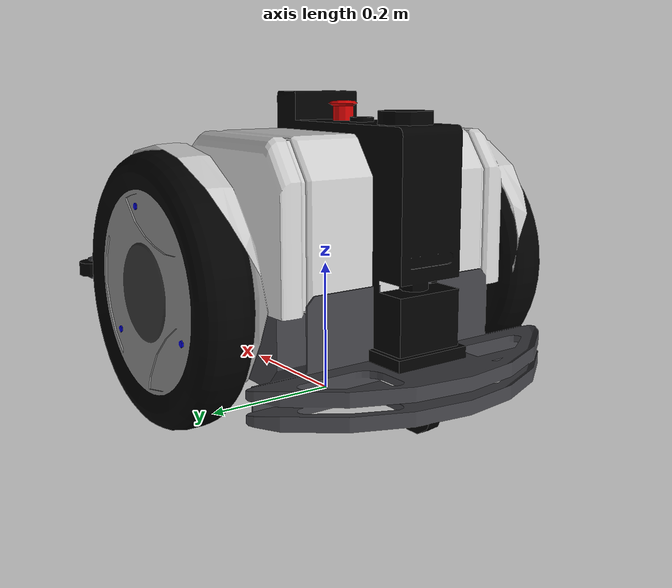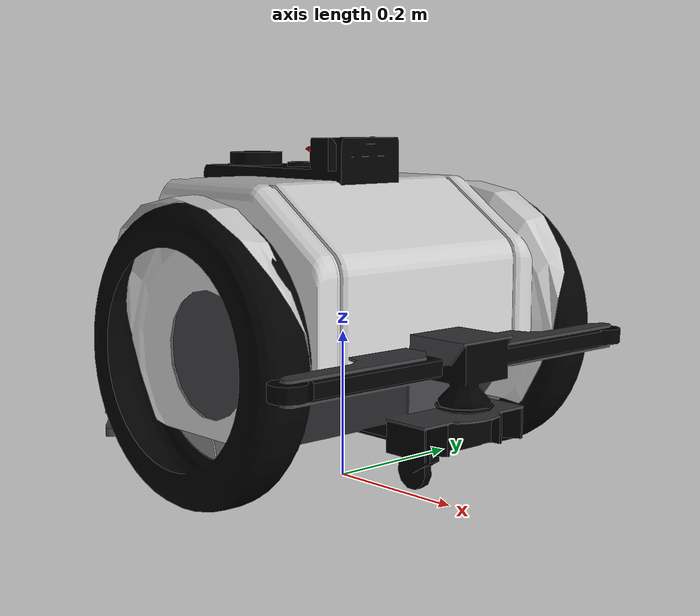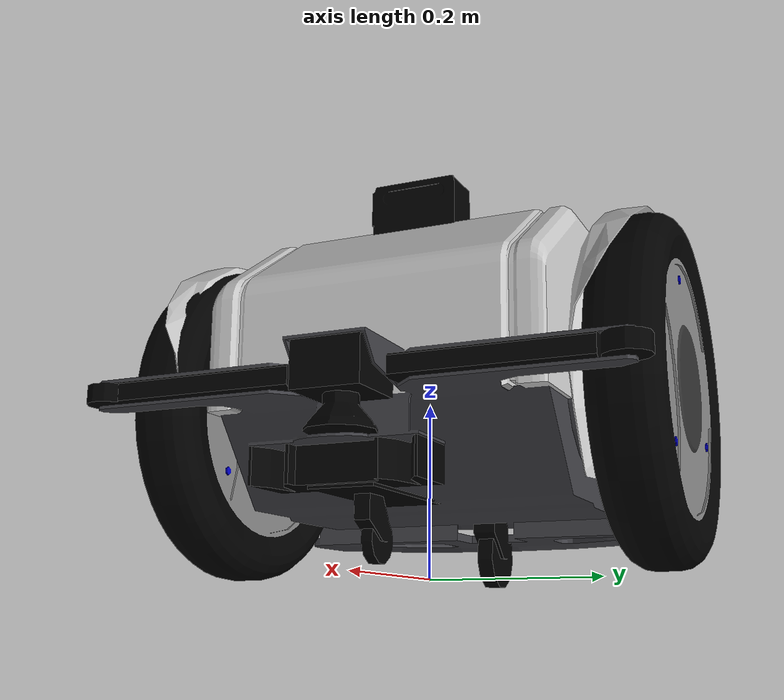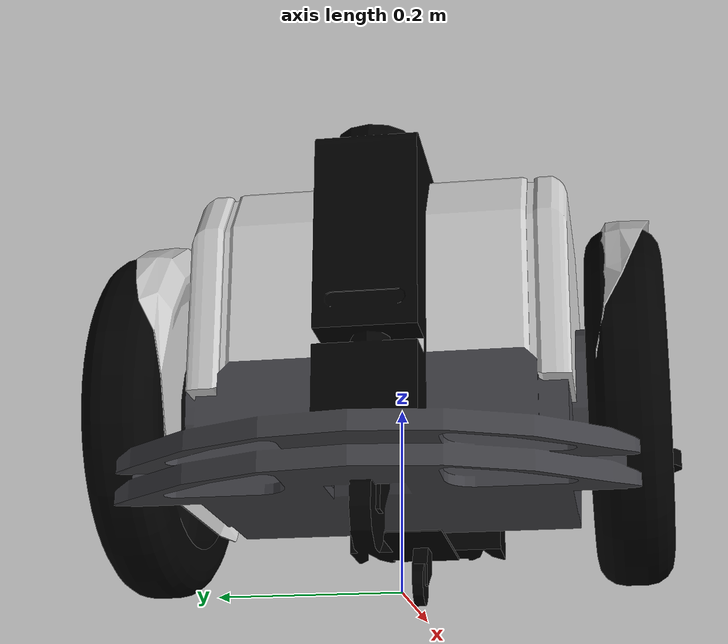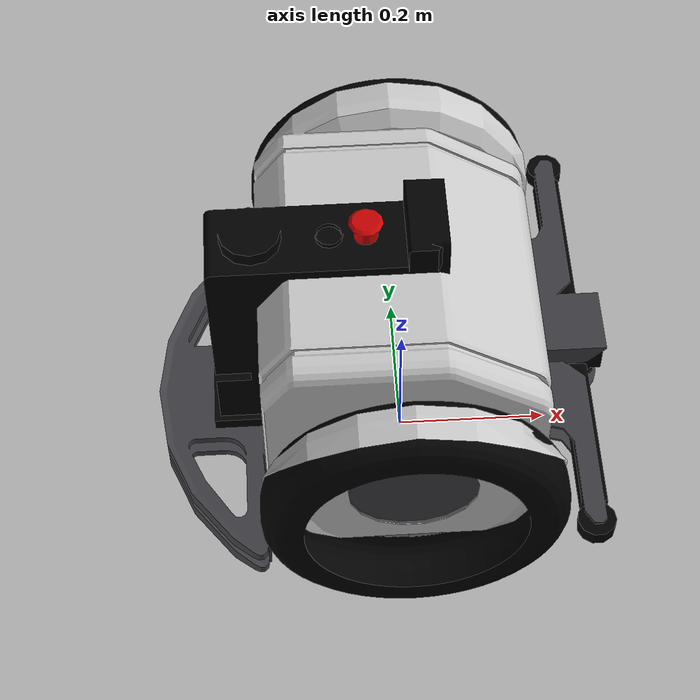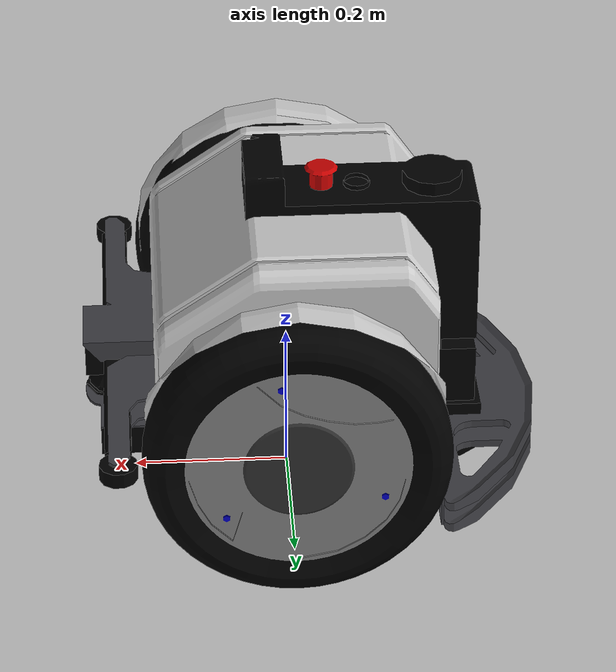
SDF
<?xml version='1.0' encoding='UTF-8'?>
<sdf version="1.8">
  <model name="tugbot">
    <pose>0 0 0 0 0 0</pose>
    <self_collide>false</self_collide>
    <static>false</static>

    <!-- BASE FOOTPRINT (same as TurtleBot3) -->
    <link name="base_footprint"/>

    <!-- BASE LINK -->
    <link name="base_link">
      <inertial>
        <pose>-0.1 0 0.1 0 0 0</pose>
        <mass>46.2</mass>
        <inertia>
          <ixx>1.55925</ixx>
          <ixy>0</ixy>
          <ixz>0</ixz>
          <iyy>1.55925</iyy>
          <iyz>0</iyz>
          <izz>1.55925</izz>
        </inertia>
      </inertial>
      <collision name="base_link_collision">
        <geometry>
          <mesh>
            <uri>meshes/base/tugbot_simp.stl</uri>
          </mesh>
        </geometry>
      </collision>
      <visual name="base_link_visual">
        <geometry>
          <mesh>
            <uri>meshes/base/tugbot_simp.dae</uri>
          </mesh>
        </geometry>
      </visual>
    </link>

    <!-- IMU LINK (same structure as TurtleBot3) -->
    <link name="imu_link">
      <sensor name="tugbot_imu" type="imu">
        <always_on>true</always_on>
        <update_rate>200</update_rate>
        <topic>imu</topic>
        <imu>
          <angular_velocity>
            <x><noise type="gaussian"><mean>0.0</mean><stddev>2e-4</stddev></noise></x>
            <y><noise type="gaussian"><mean>0.0</mean><stddev>2e-4</stddev></noise></y>
            <z><noise type="gaussian"><mean>0.0</mean><stddev>2e-4</stddev></noise></z>
          </angular_velocity>
          <linear_acceleration>
            <x><noise type="gaussian"><mean>0.0</mean><stddev>1.7e-2</stddev></noise></x>
            <y><noise type="gaussian"><mean>0.0</mean><stddev>1.7e-2</stddev></noise></y>
            <z><noise type="gaussian"><mean>0.0</mean><stddev>1.7e-2</stddev></noise></z>
          </linear_acceleration>
        </imu>
      </sensor>
    </link>

    <!-- LIDAR LINK (same structure as TurtleBot3 base_scan) -->
    <link name="base_scan">
      <pose>0.221 0 0.1404 0 0 0</pose>
      <inertial>
        <mass>0.114</mass>
        <inertia>
          <ixx>0.001</ixx>
          <ixy>0.000</ixy>
          <ixz>0.000</ixz>
          <iyy>0.001</iyy>
          <iyz>0.000</iyz>
          <izz>0.001</izz>
        </inertia>
      </inertial>
      <sensor name="hls_lfcd_lds" type="gpu_lidar">
        <always_on>true</always_on>
        <visualize>true</visualize>
        <update_rate>10</update_rate>
        <topic>scan</topic>
        <gz_frame_id>base_scan</gz_frame_id>
        <ray>
          <scan>
            <horizontal>
              <samples>360</samples>
              <resolution>1.0</resolution>
              <min_angle>0.0</min_angle>
              <max_angle>6.28</max_angle>
            </horizontal>
          </scan>
          <range>
            <min>0.60</min>
            <max>10.0</max>
            <resolution>0.015</resolution>
          </range>
          <noise>
            <type>gaussian</type>
            <mean>0.0</mean>
            <stddev>0.005</stddev>
          </noise>
        </ray>
      </sensor>
    </link>

    <!-- WHEELS -->
    <link name="wheel_left_link">
      <pose>0 0.257 0.195 -1.5708 0 0</pose>
      <inertial>
        <mass>2.0</mass>
        <inertia>
          <ixx>0.019</ixx>
          <ixy>0</ixy>
          <ixz>0</ixz>
          <iyy>0.019</iyy>
          <iyz>0</iyz>
          <izz>0.038</izz>
        </inertia>
      </inertial>
      <collision name="wheel_left_collision">
        <geometry>
          <cylinder>
            <radius>0.195</radius>
            <length>0.05</length>
          </cylinder>
        </geometry>
        <surface>
          <friction>
            <ode>
              <mu>100000</mu>
              <mu2>100000</mu2>
              <fdir1>0 0 0</fdir1>
              <slip1>0.0</slip1>
              <slip2>0.0</slip2>
            </ode>
          </friction>
          <contact>
            <ode>
              <soft_cfm>0</soft_cfm>
              <soft_erp>0.2</soft_erp>
              <kp>1e+5</kp>
              <kd>1</kd>
              <max_vel>0.01</max_vel>
              <min_depth>0.001</min_depth>
            </ode>
          </contact>
        </surface>
      </collision>
      <visual name="wheel_left_visual">
        <pose>0 0 -0.03 0 0 0</pose>
        <geometry>
          <mesh>
            <scale>0.98 0.98 1.0</scale>
            <uri>meshes/wheel/wheel.dae</uri>
          </mesh>
        </geometry>
      </visual>
    </link>

    <link name="wheel_right_link">
      <pose>0 -0.257 0.195 -1.5708 0 0</pose>
      <inertial>
        <mass>2.0</mass>
        <inertia>
          <ixx>0.019</ixx>
          <ixy>0</ixy>
          <ixz>0</ixz>
          <iyy>0.019</iyy>
          <iyz>0</iyz>
          <izz>0.038</izz>
        </inertia>
      </inertial>
      <collision name="wheel_right_collision">
        <geometry>
          <cylinder>
            <radius>0.195</radius>
            <length>0.05</length>
          </cylinder>
        </geometry>
        <surface>
          <friction>
            <ode>
              <mu>100000</mu>
              <mu2>100000</mu2>
              <fdir1>0 0 0</fdir1>
              <slip1>0.0</slip1>
              <slip2>0.0</slip2>
            </ode>
          </friction>
          <contact>
            <ode>
              <soft_cfm>0</soft_cfm>
              <soft_erp>0.2</soft_erp>
              <kp>1e+5</kp>
              <kd>1</kd>
              <max_vel>0.01</max_vel>
              <min_depth>0.001</min_depth>
            </ode>
          </contact>
        </surface>
      </collision>
      <visual name="wheel_right_visual">
        <pose>0 0 -0.03 0 0 0</pose>
        <geometry>
          <mesh>
            <scale>0.98 0.98 1.0</scale>
            <uri>meshes/wheel/wheel.dae</uri>
          </mesh>
        </geometry>
      </visual>
    </link>

    <!-- CASTER WHEELS -->
    <link name="caster_front_link">
      <pose>0.145 0 0.035 0 0 0</pose>
      <inertial>
        <mass>0.1</mass>
        <inertia>
          <ixx>0.00001</ixx>
          <ixy>0</ixy>
          <ixz>0</ixz>
          <iyy>0.00001</iyy>
          <iyz>0</iyz>
          <izz>0.00001</izz>
        </inertia>
      </inertial>
      <collision name="collision">
        <geometry>
          <sphere>
            <radius>0.025</radius>
          </sphere>
        </geometry>
        <surface>
          <contact>
            <ode>
              <soft_cfm>0</soft_cfm>
              <soft_erp>0.2</soft_erp>
              <kp>1e+5</kp>
              <kd>1</kd>
              <max_vel>0.01</max_vel>
              <min_depth>0.001</min_depth>
            </ode>
          </contact>
        </surface>
      </collision>
    </link>

    <link name="caster_back_link">
      <pose>-0.225 0 0.035 0 0 0</pose>
      <inertial>
        <mass>0.1</mass>
        <inertia>
          <ixx>0.00001</ixx>
          <ixy>0</ixy>
          <ixz>0</ixz>
          <iyy>0.00001</iyy>
          <iyz>0</iyz>
          <izz>0.00001</izz>
        </inertia>
      </inertial>
      <collision name="collision">
        <geometry>
          <sphere>
            <radius>0.035</radius>
          </sphere>
        </geometry>
        <surface>
          <contact>
            <ode>
              <soft_cfm>0</soft_cfm>
              <soft_erp>0.2</soft_erp>
              <kp>1e+5</kp>
              <kd>1</kd>
              <max_vel>0.01</max_vel>
              <min_depth>0.001</min_depth>
            </ode>
          </contact>
        </surface>
      </collision>
    </link>

    <!-- JOINTS (same structure as TurtleBot3) -->
    <joint name="base_joint" type="fixed">
      <parent>base_footprint</parent>
      <child>base_link</child>
      <pose>0 0 0 0 0 0</pose>
    </joint>

    <joint name="imu_joint" type="fixed">
      <parent>base_link</parent>
      <child>imu_link</child>
      <pose>0.14 0.02 0.25 0 0 0</pose>
    </joint>

    <joint name="lidar_joint" type="fixed">
      <parent>base_link</parent>
      <child>base_scan</child>
    </joint>

    <joint name="wheel_left_joint" type="revolute">
      <parent>base_link</parent>
      <child>wheel_left_link</child>
      <axis>
        <xyz>0 0 1</xyz>
        <limit>
          <effort>20</effort>
        </limit>
      </axis>
    </joint>

    <joint name="wheel_right_joint" type="revolute">
      <parent>base_link</parent>
      <child>wheel_right_link</child>
      <axis>
        <xyz>0 0 1</xyz>
        <limit>
          <effort>20</effort>
        </limit>
      </axis>
    </joint>

    <joint name="caster_front_joint" type="ball">
      <parent>base_link</parent>
      <child>caster_front_link</child>
    </joint>

    <joint name="caster_back_joint" type="ball">
      <parent>base_link</parent>
      <child>caster_back_link</child>
    </joint>

    <!-- DIFF DRIVE PLUGIN (same as TurtleBot3) -->
    <plugin filename="gz-sim-diff-drive-system" name="gz::sim::systems::DiffDrive">
      <!-- wheels -->
      <left_joint>wheel_left_joint</left_joint>
      <right_joint>wheel_right_joint</right_joint>

      <!-- kinematics -->
      <wheel_separation>0.514</wheel_separation>
      <wheel_radius>0.195</wheel_radius>

      <!-- limits -->
      <max_linear_acceleration>1.0</max_linear_acceleration>

      <topic>cmd_vel</topic>

      <odom_topic>odom</odom_topic>
      <frame_id>odom</frame_id>
      <child_frame_id>base_footprint</child_frame_id>
      <odom_publisher_frequency>30</odom_publisher_frequency>

      <tf_topic>/tf</tf_topic>
    </plugin>

    <!-- JOINT STATE PUBLISHER (same as TurtleBot3) -->
    <plugin filename="gz-sim-joint-state-publisher-system" name="gz::sim::systems::JointStatePublisher">
      <topic>joint_states</topic>
      <joint_name>wheel_left_joint</joint_name>
      <joint_name>wheel_right_joint</joint_name>
    </plugin>

  </model>
</sdf>
